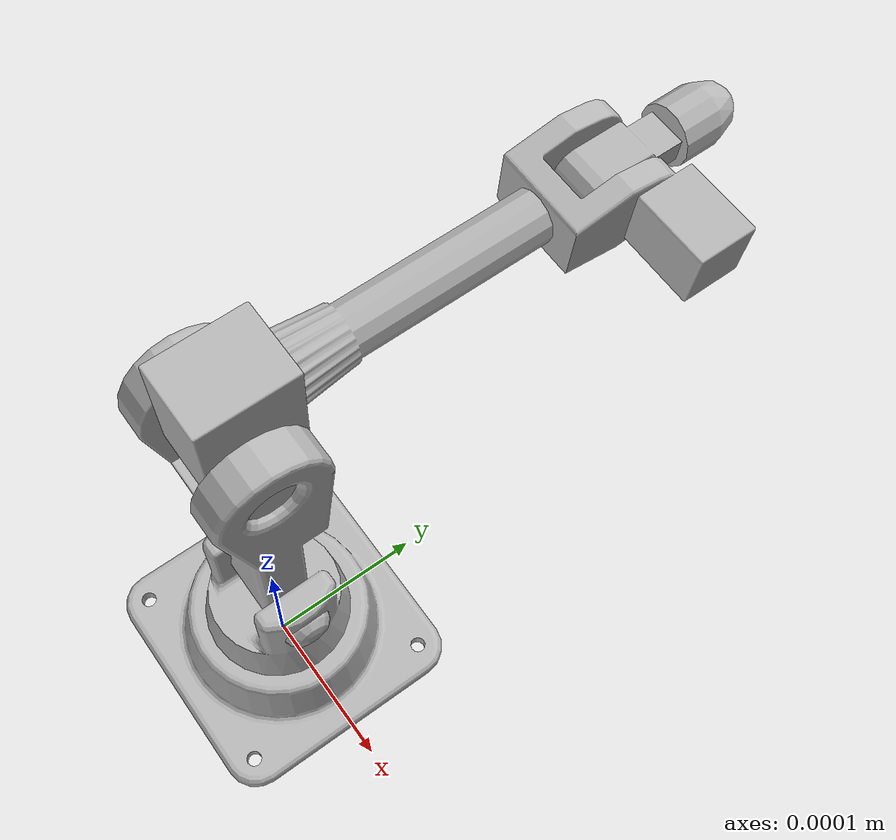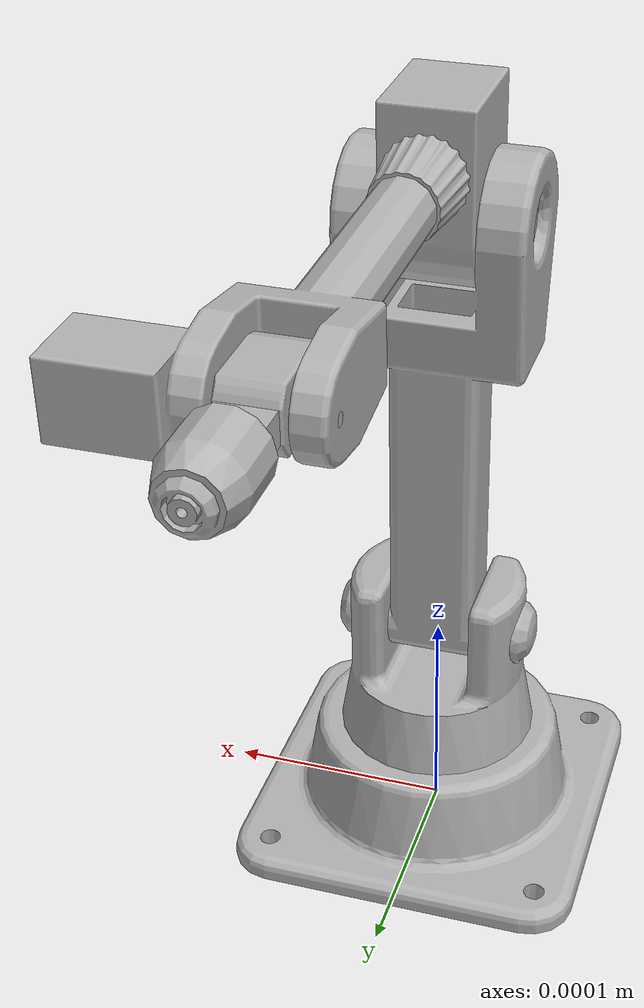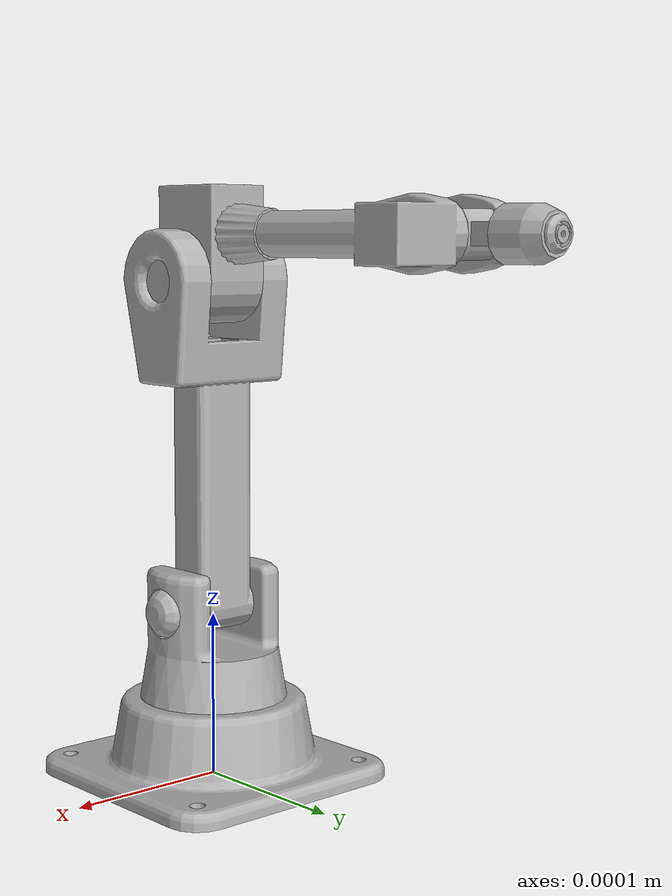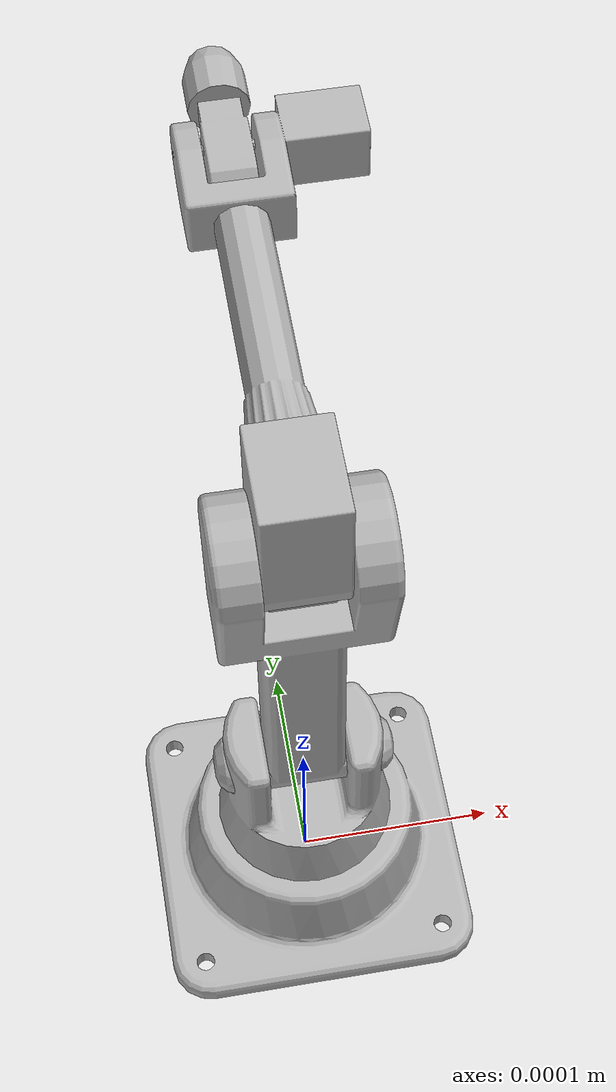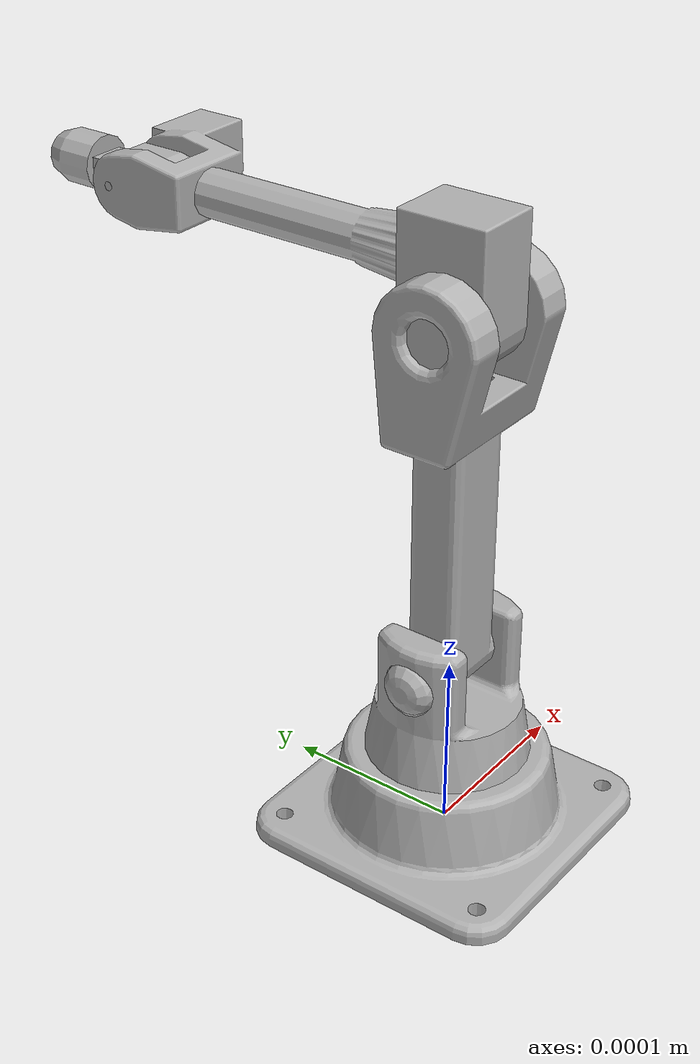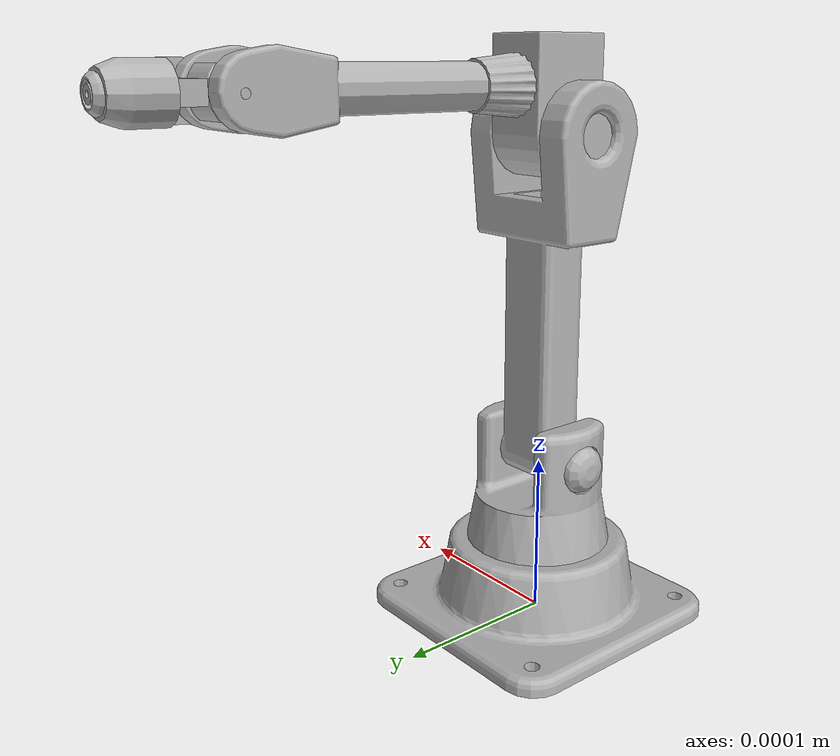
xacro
<?xml version="1.0" ?>
<robot name="ROBOT_PROYECTO_FUNDA" xmlns:xacro="http://www.ros.org/wiki/xacro">

<xacro:include filename="$(find ROBOT_PROYECTO_FUNDA_description)/urdf/materials.xacro" />
<xacro:include filename="$(find ROBOT_PROYECTO_FUNDA_description)/urdf/ROBOT_PROYECTO_FUNDA.trans" />
<xacro:include filename="$(find ROBOT_PROYECTO_FUNDA_description)/urdf/ROBOT_PROYECTO_FUNDA.gazebo" />
<link name="base_link">
  <inertial>
    <origin xyz="-3.0643350533575795e-15 -5.81835769624857e-17 0.018608735782155033" rpy="0 0 0"/>
    <mass value="3.681210634499537"/>
    <inertia ixx="0.007055" iyy="0.007055" izz="0.012041" ixy="-0.0" iyz="-0.0" ixz="-0.0"/>
  </inertial>
  <visual>
    <origin xyz="0 0 0" rpy="0 0 0"/>
    <geometry>
      <mesh filename="package://ROBOT_PROYECTO_FUNDA_description/meshes/base_link.stl" scale="0.001 0.001 0.001"/>
    </geometry>
    <material name="silver"/>
  </visual>
  <collision>
    <origin xyz="0 0 0" rpy="0 0 0"/>
    <geometry>
      <mesh filename="package://ROBOT_PROYECTO_FUNDA_description/meshes/base_link.stl" scale="0.001 0.001 0.001"/>
    </geometry>
  </collision>
</link>

<link name="link1_1">
  <inertial>
    <origin xyz="-2.1512973629865014e-05 -4.170466759319841e-09 0.016937708587327557" rpy="0 0 0"/>
    <mass value="2.3854069792520733"/>
    <inertia ixx="0.002223" iyy="0.002484" izz="0.002413" ixy="-0.0" iyz="-0.0" ixz="2e-06"/>
  </inertial>
  <visual>
    <origin xyz="-0.0 -0.0 -0.05" rpy="0 0 0"/>
    <geometry>
      <mesh filename="package://ROBOT_PROYECTO_FUNDA_description/meshes/link1_1.stl" scale="0.001 0.001 0.001"/>
    </geometry>
    <material name="silver"/>
  </visual>
  <collision>
    <origin xyz="-0.0 -0.0 -0.05" rpy="0 0 0"/>
    <geometry>
      <mesh filename="package://ROBOT_PROYECTO_FUNDA_description/meshes/link1_1.stl" scale="0.001 0.001 0.001"/>
    </geometry>
  </collision>
</link>

<link name="link2_1">
  <inertial>
    <origin xyz="5.03801001463613e-10 -0.002257669022233806 0.13383977677365372" rpy="0 0 0"/>
    <mass value="2.0825690848458756"/>
    <inertia ixx="0.009789" iyy="0.010731" izz="0.001784" ixy="0.0" iyz="0.000234" ixz="-0.0"/>
  </inertial>
  <visual>
    <origin xyz="0.0 -0.0 -0.106" rpy="0 0 0"/>
    <geometry>
      <mesh filename="package://ROBOT_PROYECTO_FUNDA_description/meshes/link2_1.stl" scale="0.001 0.001 0.001"/>
    </geometry>
    <material name="silver"/>
  </visual>
  <collision>
    <origin xyz="0.0 -0.0 -0.106" rpy="0 0 0"/>
    <geometry>
      <mesh filename="package://ROBOT_PROYECTO_FUNDA_description/meshes/link2_1.stl" scale="0.001 0.001 0.001"/>
    </geometry>
  </collision>
</link>

<link name="link3_1">
  <inertial>
    <origin xyz="-3.551362869946606e-19 0.00434317057470694 0.015475703131377472" rpy="0 0 0"/>
    <mass value="0.17175014190624968"/>
    <inertia ixx="0.000112" iyy="0.000112" izz="6.3e-05" ixy="-0.0" iyz="-2e-06" ixz="-0.0"/>
  </inertial>
  <visual>
    <origin xyz="-0.0 0.005 -0.301" rpy="0 0 0"/>
    <geometry>
      <mesh filename="package://ROBOT_PROYECTO_FUNDA_description/meshes/link3_1.stl" scale="0.001 0.001 0.001"/>
    </geometry>
    <material name="silver"/>
  </visual>
  <collision>
    <origin xyz="-0.0 0.005 -0.301" rpy="0 0 0"/>
    <geometry>
      <mesh filename="package://ROBOT_PROYECTO_FUNDA_description/meshes/link3_1.stl" scale="0.001 0.001 0.001"/>
    </geometry>
  </collision>
</link>

<link name="link4_1">
  <inertial>
    <origin xyz="0.010683265864992925 0.1217611875039267 -5.493222942482001e-05" rpy="0 0 0"/>
    <mass value="1.1883665556027"/>
    <inertia ixx="0.004412" iyy="0.000734" izz="0.004962" ixy="-0.000714" iyz="4e-06" ixz="2e-06"/>
  </inertial>
  <visual>
    <origin xyz="-0.0 -0.025 -0.328" rpy="0 0 0"/>
    <geometry>
      <mesh filename="package://ROBOT_PROYECTO_FUNDA_description/meshes/link4_1.stl" scale="0.001 0.001 0.001"/>
    </geometry>
    <material name="silver"/>
  </visual>
  <collision>
    <origin xyz="-0.0 -0.025 -0.328" rpy="0 0 0"/>
    <geometry>
      <mesh filename="package://ROBOT_PROYECTO_FUNDA_description/meshes/link4_1.stl" scale="0.001 0.001 0.001"/>
    </geometry>
  </collision>
</link>

<link name="link5_1">
  <inertial>
    <origin xyz="2.7841458772332624e-09 -0.005581416777431569 5.137388451065261e-05" rpy="0 0 0"/>
    <mass value="0.025978846048009454"/>
    <inertia ixx="6e-06" iyy="2e-06" izz="6e-06" ixy="-0.0" iyz="-0.0" ixz="-0.0"/>
  </inertial>
  <visual>
    <origin xyz="-0.0 -0.203 -0.327766" rpy="0 0 0"/>
    <geometry>
      <mesh filename="package://ROBOT_PROYECTO_FUNDA_description/meshes/link5_1.stl" scale="0.001 0.001 0.001"/>
    </geometry>
    <material name="silver"/>
  </visual>
  <collision>
    <origin xyz="-0.0 -0.203 -0.327766" rpy="0 0 0"/>
    <geometry>
      <mesh filename="package://ROBOT_PROYECTO_FUNDA_description/meshes/link5_1.stl" scale="0.001 0.001 0.001"/>
    </geometry>
  </collision>
</link>

<link name="link6_1">
  <inertial>
    <origin xyz="-3.2260852801792407e-07 0.014664378789435384 -1.155322028711936e-06" rpy="0 0 0"/>
    <mass value="0.15787075091036468"/>
    <inertia ixx="2.1e-05" iyy="1.7e-05" izz="2.1e-05" ixy="0.0" iyz="0.0" ixz="0.0"/>
  </inertial>
  <visual>
    <origin xyz="-0.0 -0.228 -0.328" rpy="0 0 0"/>
    <geometry>
      <mesh filename="package://ROBOT_PROYECTO_FUNDA_description/meshes/link6_1.stl" scale="0.001 0.001 0.001"/>
    </geometry>
    <material name="silver"/>
  </visual>
  <collision>
    <origin xyz="-0.0 -0.228 -0.328" rpy="0 0 0"/>
    <geometry>
      <mesh filename="package://ROBOT_PROYECTO_FUNDA_description/meshes/link6_1.stl" scale="0.001 0.001 0.001"/>
    </geometry>
  </collision>
</link>

<joint name="Revolución 1" type="revolute">
  <origin xyz="0.0 0.0 0.05" rpy="0 0 0"/>
  <parent link="base_link"/>
  <child link="link1_1"/>
  <axis xyz="0.0 0.0 1.0"/>
  <limit upper="6.283185" lower="0.0" effort="100" velocity="100"/>
</joint>

<joint name="Revolución 2" type="revolute">
  <origin xyz="-0.0 0.0 0.056" rpy="0 0 0"/>
  <parent link="link1_1"/>
  <child link="link2_1"/>
  <axis xyz="1.0 0.0 0.0"/>
  <limit upper="1.570796" lower="-1.570796" effort="100" velocity="100"/>
</joint>

<joint name="Revolución 4" type="revolute">
  <origin xyz="0.0 -0.005 0.195" rpy="0 0 0"/>
  <parent link="link2_1"/>
  <child link="link3_1"/>
  <axis xyz="1.0 0.0 0.0"/>
  <limit upper="1.570796" lower="-1.570796" effort="100" velocity="100"/>
</joint>

<joint name="Revolución 5" type="revolute">
  <origin xyz="0.0 0.03 0.027" rpy="0 0 0"/>
  <parent link="link3_1"/>
  <child link="link4_1"/>
  <axis xyz="0.0 1.0 0.0"/>
  <limit upper="6.283185" lower="0.0" effort="100" velocity="100"/>
</joint>

<joint name="Revolución 6" type="revolute">
  <origin xyz="0.0 0.178 -0.000234" rpy="0 0 0"/>
  <parent link="link4_1"/>
  <child link="link5_1"/>
  <axis xyz="-1.0 0.0 0.0"/>
  <limit upper="1.570796" lower="-1.570796" effort="100" velocity="100"/>
</joint>

<joint name="Revolución 7" type="revolute">
  <origin xyz="0.0 0.025 0.000234" rpy="0 0 0"/>
  <parent link="link5_1"/>
  <child link="link6_1"/>
  <axis xyz="0.0 1.0 0.0"/>
  <limit upper="6.283185" lower="0.0" effort="100" velocity="100"/>
</joint>

</robot>

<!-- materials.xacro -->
<robot name="ROBOT_PROYECTO_FUNDA" xmlns:xacro="http://www.ros.org/wiki/xacro" >

<material name="silver">
  <color rgba="0.700 0.700 0.700 1.000"/>
</material>

</robot>

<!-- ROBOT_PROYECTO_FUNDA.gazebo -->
<robot name="ROBOT_PROYECTO_FUNDA" xmlns:xacro="http://www.ros.org/wiki/xacro" >

<xacro:property name="body_color" value="Gazebo/Silver" />

<gazebo>
  <plugin name="control" filename="libgazebo_ros_control.so"/>
</gazebo>
<gazebo reference="base_link">
  <material>${body_color}</material>
  <mu1>0.2</mu1>
  <mu2>0.2</mu2>
  <selfCollide>true</selfCollide>
  <gravity>true</gravity>
</gazebo>

<gazebo reference="link1_1">
  <material>${body_color}</material>
  <mu1>0.2</mu1>
  <mu2>0.2</mu2>
  <selfCollide>true</selfCollide>
</gazebo>

<gazebo reference="link2_1">
  <material>${body_color}</material>
  <mu1>0.2</mu1>
  <mu2>0.2</mu2>
  <selfCollide>true</selfCollide>
</gazebo>

<gazebo reference="link3_1">
  <material>${body_color}</material>
  <mu1>0.2</mu1>
  <mu2>0.2</mu2>
  <selfCollide>true</selfCollide>
</gazebo>

<gazebo reference="link4_1">
  <material>${body_color}</material>
  <mu1>0.2</mu1>
  <mu2>0.2</mu2>
  <selfCollide>true</selfCollide>
</gazebo>

<gazebo reference="link5_1">
  <material>${body_color}</material>
  <mu1>0.2</mu1>
  <mu2>0.2</mu2>
  <selfCollide>true</selfCollide>
</gazebo>

<gazebo reference="link6_1">
  <material>${body_color}</material>
  <mu1>0.2</mu1>
  <mu2>0.2</mu2>
  <selfCollide>true</selfCollide>
</gazebo>

</robot>
